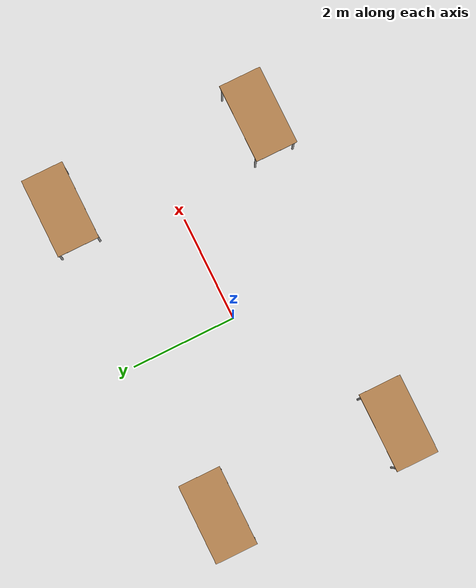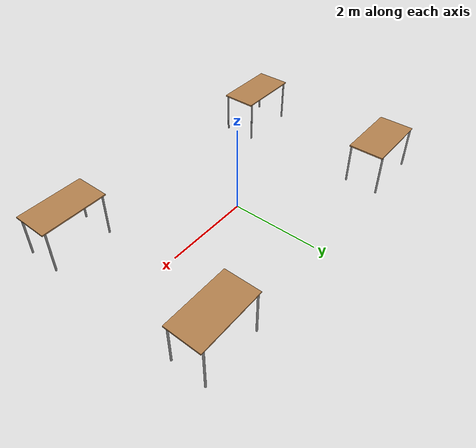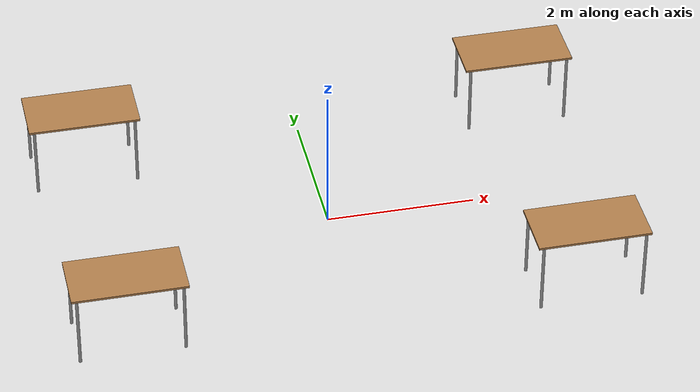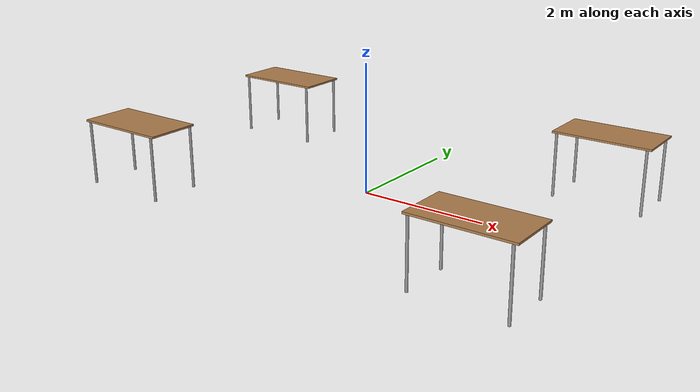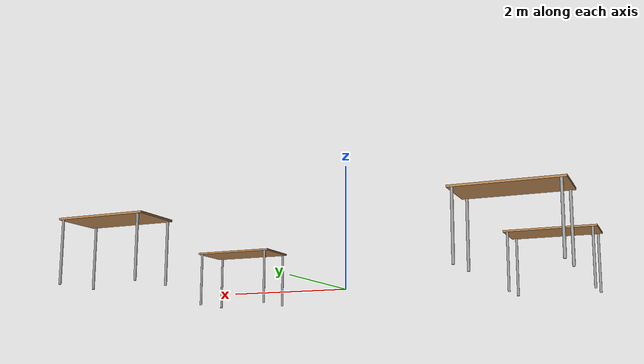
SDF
<?xml version='1.0'?>
<sdf version='1.7'>
  <model name='desks'>
    <model name='table'>
      <static>1</static>
      <link name='link'>
        <collision name='surface'>
          <pose>0 0 1 0 -0 0</pose>
          <geometry>
            <box>
              <size>1.5 0.8 0.03</size>
            </box>
          </geometry>
          <surface>
            <friction>
              <ode>
                <mu>0.6</mu>
                <mu2>0.6</mu2>
              </ode>
            </friction>
          </surface>
        </collision>
        <visual name='visual1'>
          <pose>0 0 1 0 -0 0</pose>
          <geometry>
            <box>
              <size>1.5 0.8 0.03</size>
            </box>
          </geometry>
          <material>
            <script>
              <uri>file://media/materials/scripts/gazebo.material</uri>
              <name>Gazebo/Wood</name>
            </script>
          </material>
        </visual>
        <collision name='front_left_leg'>
          <pose>0.68 0.38 0.5 0 -0 0</pose>
          <geometry>
            <cylinder>
              <radius>0.02</radius>
              <length>1</length>
            </cylinder>
          </geometry>
        </collision>
        <visual name='front_left_leg'>
          <pose>0.68 0.38 0.5 0 -0 0</pose>
          <geometry>
            <cylinder>
              <radius>0.02</radius>
              <length>1</length>
            </cylinder>
          </geometry>
          <material>
            <script>
              <uri>file://media/materials/scripts/gazebo.material</uri>
              <name>Gazebo/Grey</name>
            </script>
          </material>
        </visual>
        <collision name='front_right_leg'>
          <pose>0.68 -0.38 0.5 0 -0 0</pose>
          <geometry>
            <cylinder>
              <radius>0.02</radius>
              <length>1</length>
            </cylinder>
          </geometry>
        </collision>
        <visual name='front_right_leg'>
          <pose>0.68 -0.38 0.5 0 -0 0</pose>
          <geometry>
            <cylinder>
              <radius>0.02</radius>
              <length>1</length>
            </cylinder>
          </geometry>
          <material>
            <script>
              <uri>file://media/materials/scripts/gazebo.material</uri>
              <name>Gazebo/Grey</name>
            </script>
          </material>
        </visual>
        <collision name='back_right_leg'>
          <pose>-0.68 -0.38 0.5 0 -0 0</pose>
          <geometry>
            <cylinder>
              <radius>0.02</radius>
              <length>1</length>
            </cylinder>
          </geometry>
        </collision>
        <visual name='back_right_leg'>
          <pose>-0.68 -0.38 0.5 0 -0 0</pose>
          <geometry>
            <cylinder>
              <radius>0.02</radius>
              <length>1</length>
            </cylinder>
          </geometry>
          <material>
            <script>
              <uri>file://media/materials/scripts/gazebo.material</uri>
              <name>Gazebo/Grey</name>
            </script>
          </material>
        </visual>
        <collision name='back_left_leg'>
          <pose>-0.68 0.38 0.5 0 -0 0</pose>
          <geometry>
            <cylinder>
              <radius>0.02</radius>
              <length>1</length>
            </cylinder>
          </geometry>
        </collision>
        <visual name='back_left_leg'>
          <pose>-0.68 0.38 0.5 0 -0 0</pose>
          <geometry>
            <cylinder>
              <radius>0.02</radius>
              <length>1</length>
            </cylinder>
          </geometry>
          <material>
            <script>
              <uri>file://media/materials/scripts/gazebo.material</uri>
              <name>Gazebo/Grey</name>
            </script>
          </material>
        </visual>
      </link>
      <pose>-2.9826 -1.75092 0 0 -0 0</pose>
    </model>
    <model name='table_clone'>
      <static>1</static>
      <link name='link'>
        <collision name='surface'>
          <pose>0 0 1 0 -0 0</pose>
          <geometry>
            <box>
              <size>1.5 0.8 0.03</size>
            </box>
          </geometry>
          <surface>
            <friction>
              <ode>
                <mu>0.6</mu>
                <mu2>0.6</mu2>
              </ode>
            </friction>
          </surface>
        </collision>
        <visual name='visual1'>
          <pose>0 0 1 0 -0 0</pose>
          <geometry>
            <box>
              <size>1.5 0.8 0.03</size>
            </box>
          </geometry>
          <material>
            <script>
              <uri>file://media/materials/scripts/gazebo.material</uri>
              <name>Gazebo/Wood</name>
            </script>
          </material>
        </visual>
        <collision name='front_left_leg'>
          <pose>0.68 0.38 0.5 0 -0 0</pose>
          <geometry>
            <cylinder>
              <radius>0.02</radius>
              <length>1</length>
            </cylinder>
          </geometry>
        </collision>
        <visual name='front_left_leg'>
          <pose>0.68 0.38 0.5 0 -0 0</pose>
          <geometry>
            <cylinder>
              <radius>0.02</radius>
              <length>1</length>
            </cylinder>
          </geometry>
          <material>
            <script>
              <uri>file://media/materials/scripts/gazebo.material</uri>
              <name>Gazebo/Grey</name>
            </script>
          </material>
        </visual>
        <collision name='front_right_leg'>
          <pose>0.68 -0.38 0.5 0 -0 0</pose>
          <geometry>
            <cylinder>
              <radius>0.02</radius>
              <length>1</length>
            </cylinder>
          </geometry>
        </collision>
        <visual name='front_right_leg'>
          <pose>0.68 -0.38 0.5 0 -0 0</pose>
          <geometry>
            <cylinder>
              <radius>0.02</radius>
              <length>1</length>
            </cylinder>
          </geometry>
          <material>
            <script>
              <uri>file://media/materials/scripts/gazebo.material</uri>
              <name>Gazebo/Grey</name>
            </script>
          </material>
        </visual>
        <collision name='back_right_leg'>
          <pose>-0.68 -0.38 0.5 0 -0 0</pose>
          <geometry>
            <cylinder>
              <radius>0.02</radius>
              <length>1</length>
            </cylinder>
          </geometry>
        </collision>
        <visual name='back_right_leg'>
          <pose>-0.68 -0.38 0.5 0 -0 0</pose>
          <geometry>
            <cylinder>
              <radius>0.02</radius>
              <length>1</length>
            </cylinder>
          </geometry>
          <material>
            <script>
              <uri>file://media/materials/scripts/gazebo.material</uri>
              <name>Gazebo/Grey</name>
            </script>
          </material>
        </visual>
        <collision name='back_left_leg'>
          <pose>-0.68 0.38 0.5 0 -0 0</pose>
          <geometry>
            <cylinder>
              <radius>0.02</radius>
              <length>1</length>
            </cylinder>
          </geometry>
        </collision>
        <visual name='back_left_leg'>
          <pose>-0.68 0.38 0.5 0 -0 0</pose>
          <geometry>
            <cylinder>
              <radius>0.02</radius>
              <length>1</length>
            </cylinder>
          </geometry>
          <material>
            <script>
              <uri>file://media/materials/scripts/gazebo.material</uri>
              <name>Gazebo/Grey</name>
            </script>
          </material>
        </visual>
      </link>
      <pose>-3.02724 1.78617 -0 0 -0 0</pose>
    </model>
    <model name='table_clone_0'>
      <static>1</static>
      <link name='link'>
        <collision name='surface'>
          <pose>0 0 1 0 -0 0</pose>
          <geometry>
            <box>
              <size>1.5 0.8 0.03</size>
            </box>
          </geometry>
          <surface>
            <friction>
              <ode>
                <mu>0.6</mu>
                <mu2>0.6</mu2>
              </ode>
            </friction>
          </surface>
        </collision>
        <visual name='visual1'>
          <pose>0 0 1 0 -0 0</pose>
          <geometry>
            <box>
              <size>1.5 0.8 0.03</size>
            </box>
          </geometry>
          <material>
            <script>
              <uri>file://media/materials/scripts/gazebo.material</uri>
              <name>Gazebo/Wood</name>
            </script>
          </material>
        </visual>
        <collision name='front_left_leg'>
          <pose>0.68 0.38 0.5 0 -0 0</pose>
          <geometry>
            <cylinder>
              <radius>0.02</radius>
              <length>1</length>
            </cylinder>
          </geometry>
        </collision>
        <visual name='front_left_leg'>
          <pose>0.68 0.38 0.5 0 -0 0</pose>
          <geometry>
            <cylinder>
              <radius>0.02</radius>
              <length>1</length>
            </cylinder>
          </geometry>
          <material>
            <script>
              <uri>file://media/materials/scripts/gazebo.material</uri>
              <name>Gazebo/Grey</name>
            </script>
          </material>
        </visual>
        <collision name='front_right_leg'>
          <pose>0.68 -0.38 0.5 0 -0 0</pose>
          <geometry>
            <cylinder>
              <radius>0.02</radius>
              <length>1</length>
            </cylinder>
          </geometry>
        </collision>
        <visual name='front_right_leg'>
          <pose>0.68 -0.38 0.5 0 -0 0</pose>
          <geometry>
            <cylinder>
              <radius>0.02</radius>
              <length>1</length>
            </cylinder>
          </geometry>
          <material>
            <script>
              <uri>file://media/materials/scripts/gazebo.material</uri>
              <name>Gazebo/Grey</name>
            </script>
          </material>
        </visual>
        <collision name='back_right_leg'>
          <pose>-0.68 -0.38 0.5 0 -0 0</pose>
          <geometry>
            <cylinder>
              <radius>0.02</radius>
              <length>1</length>
            </cylinder>
          </geometry>
        </collision>
        <visual name='back_right_leg'>
          <pose>-0.68 -0.38 0.5 0 -0 0</pose>
          <geometry>
            <cylinder>
              <radius>0.02</radius>
              <length>1</length>
            </cylinder>
          </geometry>
          <material>
            <script>
              <uri>file://media/materials/scripts/gazebo.material</uri>
              <name>Gazebo/Grey</name>
            </script>
          </material>
        </visual>
        <collision name='back_left_leg'>
          <pose>-0.68 0.38 0.5 0 -0 0</pose>
          <geometry>
            <cylinder>
              <radius>0.02</radius>
              <length>1</length>
            </cylinder>
          </geometry>
        </collision>
        <visual name='back_left_leg'>
          <pose>-0.68 0.38 0.5 0 -0 0</pose>
          <geometry>
            <cylinder>
              <radius>0.02</radius>
              <length>1</length>
            </cylinder>
          </geometry>
          <material>
            <script>
              <uri>file://media/materials/scripts/gazebo.material</uri>
              <name>Gazebo/Grey</name>
            </script>
          </material>
        </visual>
      </link>
      <pose>3.01319 1.92417 -0 0 -0 0</pose>
    </model>
    <model name='table_clone_1'>
      <static>1</static>
      <link name='link'>
        <collision name='surface'>
          <pose>0 0 1 0 -0 0</pose>
          <geometry>
            <box>
              <size>1.5 0.8 0.03</size>
            </box>
          </geometry>
          <surface>
            <friction>
              <ode>
                <mu>0.6</mu>
                <mu2>0.6</mu2>
              </ode>
            </friction>
          </surface>
        </collision>
        <visual name='visual1'>
          <pose>0 0 1 0 -0 0</pose>
          <geometry>
            <box>
              <size>1.5 0.8 0.03</size>
            </box>
          </geometry>
          <material>
            <script>
              <uri>file://media/materials/scripts/gazebo.material</uri>
              <name>Gazebo/Wood</name>
            </script>
          </material>
        </visual>
        <collision name='front_left_leg'>
          <pose>0.68 0.38 0.5 0 -0 0</pose>
          <geometry>
            <cylinder>
              <radius>0.02</radius>
              <length>1</length>
            </cylinder>
          </geometry>
        </collision>
        <visual name='front_left_leg'>
          <pose>0.68 0.38 0.5 0 -0 0</pose>
          <geometry>
            <cylinder>
              <radius>0.02</radius>
              <length>1</length>
            </cylinder>
          </geometry>
          <material>
            <script>
              <uri>file://media/materials/scripts/gazebo.material</uri>
              <name>Gazebo/Grey</name>
            </script>
          </material>
        </visual>
        <collision name='front_right_leg'>
          <pose>0.68 -0.38 0.5 0 -0 0</pose>
          <geometry>
            <cylinder>
              <radius>0.02</radius>
              <length>1</length>
            </cylinder>
          </geometry>
        </collision>
        <visual name='front_right_leg'>
          <pose>0.68 -0.38 0.5 0 -0 0</pose>
          <geometry>
            <cylinder>
              <radius>0.02</radius>
              <length>1</length>
            </cylinder>
          </geometry>
          <material>
            <script>
              <uri>file://media/materials/scripts/gazebo.material</uri>
              <name>Gazebo/Grey</name>
            </script>
          </material>
        </visual>
        <collision name='back_right_leg'>
          <pose>-0.68 -0.38 0.5 0 -0 0</pose>
          <geometry>
            <cylinder>
              <radius>0.02</radius>
              <length>1</length>
            </cylinder>
          </geometry>
        </collision>
        <visual name='back_right_leg'>
          <pose>-0.68 -0.38 0.5 0 -0 0</pose>
          <geometry>
            <cylinder>
              <radius>0.02</radius>
              <length>1</length>
            </cylinder>
          </geometry>
          <material>
            <script>
              <uri>file://media/materials/scripts/gazebo.material</uri>
              <name>Gazebo/Grey</name>
            </script>
          </material>
        </visual>
        <collision name='back_left_leg'>
          <pose>-0.68 0.38 0.5 0 -0 0</pose>
          <geometry>
            <cylinder>
              <radius>0.02</radius>
              <length>1</length>
            </cylinder>
          </geometry>
        </collision>
        <visual name='back_left_leg'>
          <pose>-0.68 0.38 0.5 0 -0 0</pose>
          <geometry>
            <cylinder>
              <radius>0.02</radius>
              <length>1</length>
            </cylinder>
          </geometry>
          <material>
            <script>
              <uri>file://media/materials/scripts/gazebo.material</uri>
              <name>Gazebo/Grey</name>
            </script>
          </material>
        </visual>
      </link>
      <pose>2.99665 -1.95942 -0 0 -0 0</pose>
    </model>
    <static>0</static>
    <allow_auto_disable>1</allow_auto_disable>
  </model>
</sdf>
